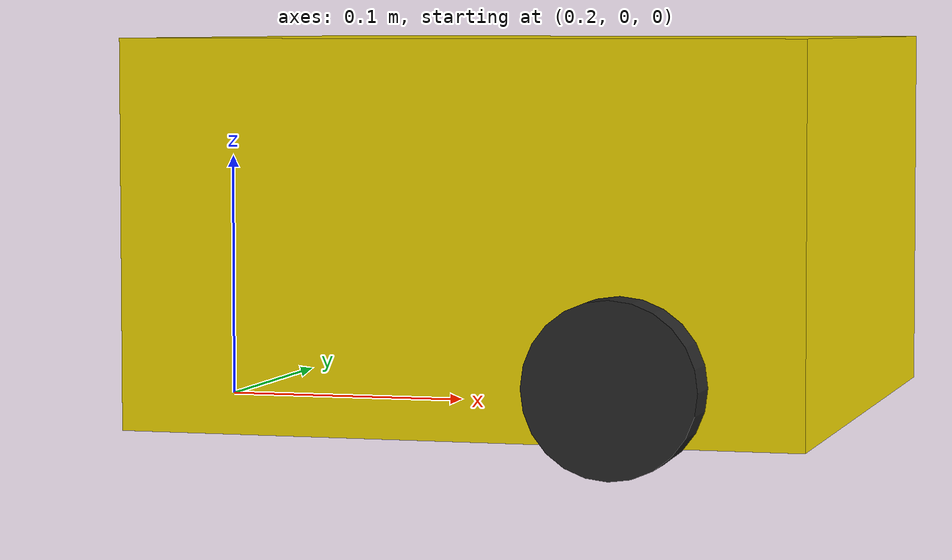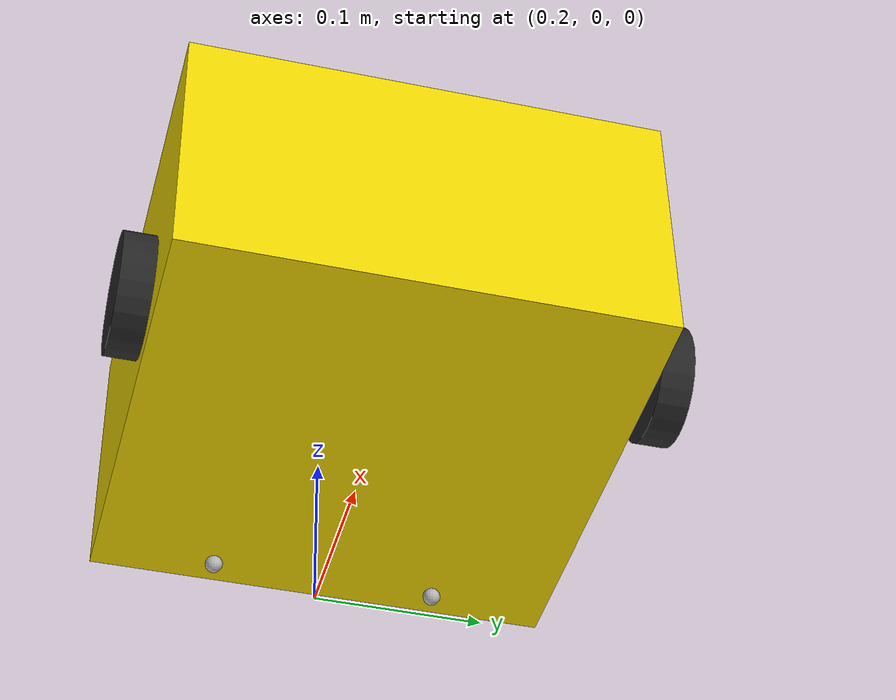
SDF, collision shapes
<?xml version="1.0" ?>
<sdf version="1.5">
  <model name="guide_robot">
  <pose>0.4 0.0 0.0 0.0 0.0 0.0</pose>

    <link name="base_footprint"/>

    <link name="base_link">

      <inertial>
        <pose>-0.064 0 0.075 0 0 0</pose>
        <inertia>
          <ixx>4.2111447e-02</ixx>
          <ixy>0</ixy>
          <ixz>0</ixz>
          <iyy>4.2111447e-02</iyy>
          <iyz>0</iyz>
          <izz>7.5254874e-02</izz>
        </inertia>
        <mass>1.3729096e+00</mass>
      </inertial>

      <collision name="base_collision">
        <pose>-0.064 0 0.075 0 0 0</pose>
        <geometry>
          <box>
            <size>0.265 0.265 0.15</size>
          </box>
        </geometry>
      </collision>

      <!-- ===== Airport Follow-Me Car (box primitives, 4x4 checkerboard) ===== -->
      <!-- Body: X -0.1965..0.0685  Y -0.1325..0.1325  Z 0..0.15 -->
      <!-- 4x4 tile size: 0.066 x 0.066 -->
      <!-- Tile X centers: -0.163, -0.097, -0.031, 0.035 -->
      <!-- Tile Y centers: -0.099, -0.033, 0.033, 0.099 -->
      <!-- Only BLACK tiles are overlaid; yellow base shows through -->

      <!-- Base body: yellow box matching collision -->
      <visual name="base_body">
        <pose>-0.064 0 0.075 0 0 0</pose>
        <geometry><box><size>0.265 0.265 0.150</size></box></geometry>
        <material>
          <ambient>0.95 0.85 0.0 1</ambient>
          <diffuse>0.95 0.85 0.0 1</diffuse>
          <specular>0.2 0.2 0.0 1</specular>
          <emissive>0.15 0.12 0.0 1</emissive>
        </material>
      </visual>

      <!-- ── TOP face 4x4 checkerboard (z=0.152) ── black tiles only ── -->
      <visual name="t00"><pose>-0.163 -0.099 0.152 0 0 0</pose>
        <geometry><box><size>0.066 0.066 0.005</size></box></geometry>
        <material><ambient>0.05 0.05 0.05 1</ambient><diffuse>0.05 0.05 0.05 1</diffuse></material></visual>
      <visual name="t02"><pose>-0.163  0.033 0.152 0 0 0</pose>
        <geometry><box><size>0.066 0.066 0.005</size></box></geometry>
        <material><ambient>0.05 0.05 0.05 1</ambient><diffuse>0.05 0.05 0.05 1</diffuse></material></visual>
      <visual name="t11"><pose>-0.097 -0.033 0.152 0 0 0</pose>
        <geometry><box><size>0.066 0.066 0.005</size></box></geometry>
        <material><ambient>0.05 0.05 0.05 1</ambient><diffuse>0.05 0.05 0.05 1</diffuse></material></visual>
      <visual name="t13"><pose>-0.097  0.099 0.152 0 0 0</pose>
        <geometry><box><size>0.066 0.066 0.005</size></box></geometry>
        <material><ambient>0.05 0.05 0.05 1</ambient><diffuse>0.05 0.05 0.05 1</diffuse></material></visual>
      <visual name="t20"><pose>-0.031 -0.099 0.152 0 0 0</pose>
        <geometry><box><size>0.066 0.066 0.005</size></box></geometry>
        <material><ambient>0.05 0.05 0.05 1</ambient><diffuse>0.05 0.05 0.05 1</diffuse></material></visual>
      <visual name="t22"><pose>-0.031  0.033 0.152 0 0 0</pose>
        <geometry><box><size>0.066 0.066 0.005</size></box></geometry>
        <material><ambient>0.05 0.05 0.05 1</ambient><diffuse>0.05 0.05 0.05 1</diffuse></material></visual>
      <visual name="t31"><pose> 0.035 -0.033 0.152 0 0 0</pose>
        <geometry><box><size>0.066 0.066 0.005</size></box></geometry>
        <material><ambient>0.05 0.05 0.05 1</ambient><diffuse>0.05 0.05 0.05 1</diffuse></material></visual>
      <visual name="t33"><pose> 0.035  0.099 0.152 0 0 0</pose>
        <geometry><box><size>0.066 0.066 0.005</size></box></geometry>
        <material><ambient>0.05 0.05 0.05 1</ambient><diffuse>0.05 0.05 0.05 1</diffuse></material></visual>

      <!-- ── FRONT face 4x2 checkerboard (x=0.070) ── black tiles ── -->
      <visual name="f00"><pose>0.070 -0.099 0.1125 0 0 0</pose>
        <geometry><box><size>0.005 0.066 0.075</size></box></geometry>
        <material><ambient>0.05 0.05 0.05 1</ambient><diffuse>0.05 0.05 0.05 1</diffuse></material></visual>
      <visual name="f02"><pose>0.070  0.033 0.1125 0 0 0</pose>
        <geometry><box><size>0.005 0.066 0.075</size></box></geometry>
        <material><ambient>0.05 0.05 0.05 1</ambient><diffuse>0.05 0.05 0.05 1</diffuse></material></visual>
      <visual name="f11"><pose>0.070 -0.033 0.0375 0 0 0</pose>
        <geometry><box><size>0.005 0.066 0.075</size></box></geometry>
        <material><ambient>0.05 0.05 0.05 1</ambient><diffuse>0.05 0.05 0.05 1</diffuse></material></visual>
      <visual name="f13"><pose>0.070  0.099 0.0375 0 0 0</pose>
        <geometry><box><size>0.005 0.066 0.075</size></box></geometry>
        <material><ambient>0.05 0.05 0.05 1</ambient><diffuse>0.05 0.05 0.05 1</diffuse></material></visual>

      <!-- ── BACK face 4x2 checkerboard (x=-0.199) ── black tiles ── -->
      <visual name="b01"><pose>-0.199 -0.033 0.1125 0 0 0</pose>
        <geometry><box><size>0.005 0.066 0.075</size></box></geometry>
        <material><ambient>0.05 0.05 0.05 1</ambient><diffuse>0.05 0.05 0.05 1</diffuse></material></visual>
      <visual name="b03"><pose>-0.199  0.099 0.1125 0 0 0</pose>
        <geometry><box><size>0.005 0.066 0.075</size></box></geometry>
        <material><ambient>0.05 0.05 0.05 1</ambient><diffuse>0.05 0.05 0.05 1</diffuse></material></visual>
      <visual name="b10"><pose>-0.199 -0.099 0.0375 0 0 0</pose>
        <geometry><box><size>0.005 0.066 0.075</size></box></geometry>
        <material><ambient>0.05 0.05 0.05 1</ambient><diffuse>0.05 0.05 0.05 1</diffuse></material></visual>
      <visual name="b12"><pose>-0.199  0.033 0.0375 0 0 0</pose>
        <geometry><box><size>0.005 0.066 0.075</size></box></geometry>
        <material><ambient>0.05 0.05 0.05 1</ambient><diffuse>0.05 0.05 0.05 1</diffuse></material></visual>

      <!-- ── LEFT face 4x2 checkerboard (y=0.135) ── black tiles ── -->
      <visual name="l00"><pose>-0.163 0.135 0.1125 0 0 0</pose>
        <geometry><box><size>0.066 0.005 0.075</size></box></geometry>
        <material><ambient>0.05 0.05 0.05 1</ambient><diffuse>0.05 0.05 0.05 1</diffuse></material></visual>
      <visual name="l02"><pose>-0.031 0.135 0.1125 0 0 0</pose>
        <geometry><box><size>0.066 0.005 0.075</size></box></geometry>
        <material><ambient>0.05 0.05 0.05 1</ambient><diffuse>0.05 0.05 0.05 1</diffuse></material></visual>
      <visual name="l11"><pose>-0.097 0.135 0.0375 0 0 0</pose>
        <geometry><box><size>0.066 0.005 0.075</size></box></geometry>
        <material><ambient>0.05 0.05 0.05 1</ambient><diffuse>0.05 0.05 0.05 1</diffuse></material></visual>
      <visual name="l13"><pose> 0.035 0.135 0.0375 0 0 0</pose>
        <geometry><box><size>0.066 0.005 0.075</size></box></geometry>
        <material><ambient>0.05 0.05 0.05 1</ambient><diffuse>0.05 0.05 0.05 1</diffuse></material></visual>

      <!-- ── RIGHT face 4x2 checkerboard (y=-0.135) ── black tiles ── -->
      <visual name="r01"><pose>-0.097 -0.135 0.1125 0 0 0</pose>
        <geometry><box><size>0.066 0.005 0.075</size></box></geometry>
        <material><ambient>0.05 0.05 0.05 1</ambient><diffuse>0.05 0.05 0.05 1</diffuse></material></visual>
      <visual name="r03"><pose> 0.035 -0.135 0.1125 0 0 0</pose>
        <geometry><box><size>0.066 0.005 0.075</size></box></geometry>
        <material><ambient>0.05 0.05 0.05 1</ambient><diffuse>0.05 0.05 0.05 1</diffuse></material></visual>
      <visual name="r10"><pose>-0.163 -0.135 0.0375 0 0 0</pose>
        <geometry><box><size>0.066 0.005 0.075</size></box></geometry>
        <material><ambient>0.05 0.05 0.05 1</ambient><diffuse>0.05 0.05 0.05 1</diffuse></material></visual>
      <visual name="r12"><pose>-0.031 -0.135 0.0375 0 0 0</pose>
        <geometry><box><size>0.066 0.005 0.075</size></box></geometry>
        <material><ambient>0.05 0.05 0.05 1</ambient><diffuse>0.05 0.05 0.05 1</diffuse></material></visual>

    </link>

    <link name="wheel_left_link">

      <inertial>
        <pose>0.0 0.144 0.023 -1.57 0 0</pose>
        <inertia>
          <ixx>1.1175580e-05</ixx>
          <ixy>-4.2369783e-11</ixy>
          <ixz>-5.9381719e-09</ixz>
          <iyy>1.1192413e-05</iyy>
          <iyz>-1.4400107e-11</iyz>
          <izz>2.0712558e-05</izz>
        </inertia>
        <mass>0.25</mass>
      </inertial>

      <collision name="wheel_left_collision">
        <pose>0.0 0.144 0.023 -1.57 0 0</pose>
        <geometry>
          <cylinder>
            <radius>0.033</radius>
            <length>0.018</length>
          </cylinder>
        </geometry>
        <surface>
          <!-- This friction pamareter don't contain reliable data!! -->
          <friction>
            <ode>
              <mu>1e10</mu>
              <mu2>1e10</mu2>
              <fdir1>0 0 0</fdir1>
              <slip1>0.0</slip1>
              <slip2>0.0</slip2>
            </ode>
          </friction>
        </surface>
      </collision>

      <visual name="wheel_left_visual">
        <pose>0.0 0.144 0.023 0 0 0</pose>
        <geometry>
          <mesh>
            <uri>model://turtlebot3_common/meshes/tire.dae</uri>
            <scale>0.001 0.001 0.001</scale>
          </mesh>
        </geometry>
        <material>
          <ambient>0.1 0.1 0.1 1</ambient>
          <diffuse>0.15 0.15 0.15 1</diffuse>
          <specular>0 0 0 0</specular>
          <emissive>0 0 0 1</emissive>
        </material> <!-- End wheel_left material -->
      </visual>
    </link>

    <link name="wheel_right_link">

      <inertial>
        <pose>0.0 -0.144 0.023 -1.57 0 0</pose>
        <inertia>
          <ixx>1.1175580e-05</ixx>
          <ixy>-4.2369783e-11</ixy>
          <ixz>-5.9381719e-09</ixz>
          <iyy>1.1192413e-05</iyy>
          <iyz>-1.4400107e-11</iyz>
          <izz>2.0712558e-05</izz>
        </inertia>
        <mass>0.25</mass>
      </inertial>

      <collision name="wheel_right_collision">
        <pose>0.0 -0.144 0.023 -1.57 0 0</pose>
        <geometry>
          <cylinder>
            <radius>0.033</radius>
            <length>0.018</length>
          </cylinder>
        </geometry>
        <surface>
          <!-- This friction pamareter don't contain reliable data!! -->
          <friction>
            <ode>
              <mu>1e10</mu>
              <mu2>1e10</mu2>
              <fdir1>0 0 0</fdir1>
              <slip1>0.0</slip1>
              <slip2>0.0</slip2>
            </ode>
          </friction>
        </surface>
      </collision>

      <visual name="wheel_right_visual">
        <pose>0.0 -0.144 0.023 0 0 0</pose>
        <geometry>
          <mesh>
            <uri>model://turtlebot3_common/meshes/tire.dae</uri>
            <scale>0.001 0.001 0.001</scale>
          </mesh>
        </geometry>
        <material>
          <ambient>0.1 0.1 0.1 1</ambient>
          <diffuse>0.15 0.15 0.15 1</diffuse>
          <specular>0 0 0 0</specular>
          <emissive>0 0 0 1</emissive>
        </material> <!-- End wheel_right material -->
      </visual>
    </link>

    <link name='caster_back_right_link'>
      <pose>-0.177 -0.064 -0.004 -1.57 0 0</pose>
      <inertial>
        <mass>0.005</mass>
        <inertia>
          <ixx>0.00001</ixx>
          <ixy>0.000</ixy>
          <ixz>0.000</ixz>
          <iyy>0.00001</iyy>
          <iyz>0.000</iyz>
          <izz>0.00001</izz>
        </inertia>
      </inertial>
      <collision name='collision'>
        <geometry>
          <sphere>
            <radius>0.005000</radius>
          </sphere>
        </geometry>
        <surface>
          <friction>
            <ode>
              <mu>1e-2</mu>
              <mu2>1e-2</mu2>
              <fdir1>0 0 0</fdir1>
              <slip1>0.0</slip1>
              <slip2>0.0</slip2>
            </ode>
          </friction>
          <contact>
            <ode>
              <soft_cfm>0</soft_cfm>
              <soft_erp>0.2</soft_erp>
              <kp>1e+5</kp>
              <kd>1</kd>
              <max_vel>0.01</max_vel>
              <min_depth>0.001</min_depth>
            </ode>
          </contact>
        </surface>
      </collision>
    </link>

    <link name='caster_back_left_link'>
      <pose>-0.177 0.064 -0.004 -1.57 0 0</pose>
      <inertial>
        <mass>0.005</mass>
        <inertia>
          <ixx>0.00001</ixx>
          <ixy>0.000</ixy>
          <ixz>0.000</ixz>
          <iyy>0.00001</iyy>
          <iyz>0.000</iyz>
          <izz>0.00001</izz>
        </inertia>
      </inertial>
      <collision name='collision'>
        <geometry>
          <sphere>
            <radius>0.005000</radius>
          </sphere>
        </geometry>
        <surface>
          <friction>
            <ode>
              <mu>1e-2</mu>
              <mu2>1e-2</mu2>
              <fdir1>0 0 0</fdir1>
              <slip1>0.0</slip1>
              <slip2>0.0</slip2>
            </ode>
          </friction>
          <contact>
            <ode>
              <soft_cfm>0</soft_cfm>
              <soft_erp>0.2</soft_erp>
              <kp>1e+5</kp>
              <kd>1</kd>
              <max_vel>0.01</max_vel>
              <min_depth>0.001</min_depth>
            </ode>
          </contact>
        </surface>
      </collision>
    </link>

    <joint name="base_joint" type="fixed">
      <parent>base_footprint</parent>
      <child>base_link</child>
      <pose>0.0 0.0 0.010 0 0 0</pose>
    </joint>

    <joint name="wheel_left_joint" type="revolute">
      <parent>base_link</parent>
      <child>wheel_left_link</child>
      <pose>0.0 0.144 0.023 -1.57 0 0</pose>
      <axis>
        <xyz>0 0 1</xyz>
      </axis>
    </joint>

    <joint name="wheel_right_joint" type="revolute">
      <parent>base_link</parent>
      <child>wheel_right_link</child>
      <pose>0.0 -0.144 0.023 -1.57 0 0</pose>
      <axis>
        <xyz>0 0 1</xyz>
      </axis>
    </joint>

    <joint name='caster_back_right_joint' type='ball'>
      <parent>base_link</parent>
      <child>caster_back_right_link</child>
    </joint>

    <joint name='caster_back_left_joint' type='ball'>
      <parent>base_link</parent>
      <child>caster_back_left_link</child>
    </joint>

    <plugin filename="gz-sim-diff-drive-system" name="gz::sim::systems::DiffDrive">

      <!-- wheels -->
      <left_joint>wheel_left_joint</left_joint>
      <right_joint>wheel_right_joint</right_joint>

      <!-- kinematics -->
      <wheel_separation>0.287</wheel_separation>
      <wheel_radius>0.033</wheel_radius>

      <!-- limits -->
      <max_linear_acceleration>1.0</max_linear_acceleration>

      <topic>guide_robot/cmd_vel</topic>

      <odom_topic>guide_robot/odom</odom_topic>
      <frame_id>odom</frame_id>
      <child_frame_id>base_footprint</child_frame_id>
      <odom_publisher_frequency>30</odom_publisher_frequency>

      <tf_topic>guide_robot/tf</tf_topic>

    </plugin>

    <plugin filename="gz-sim-joint-state-publisher-system" name="gz::sim::systems::JointStatePublisher">
      <topic>guide_robot/joint_states</topic>
      <joint_name>wheel_left_joint</joint_name>
      <joint_name>wheel_right_joint</joint_name>
    </plugin>

  </model>

</sdf>
